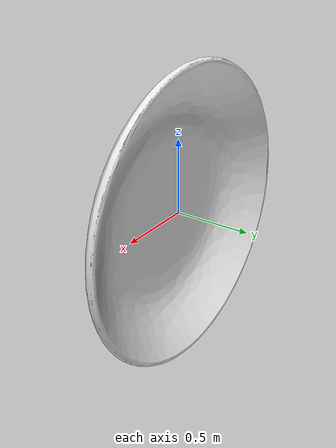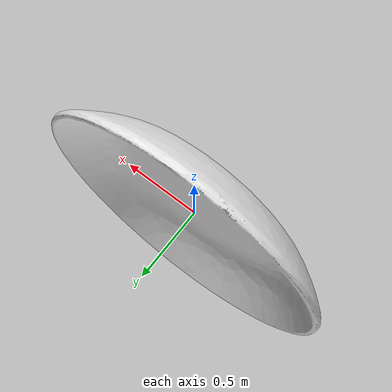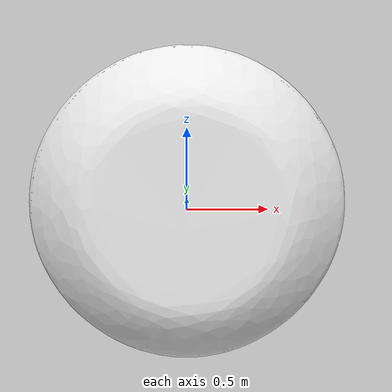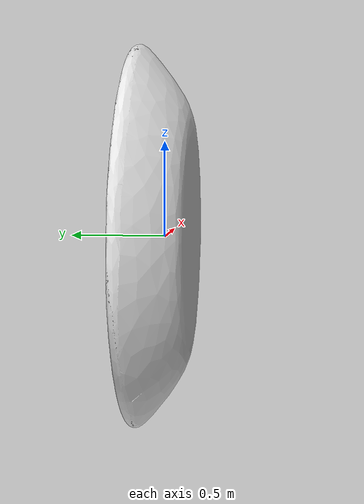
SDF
<?xml version="1.0"?>
<sdf version="1.7">
  <model name="plate">
    <link name="plate_link">
      <inertial>
        <mass>0.25</mass>
        <pose>0 0 0 0 0 0</pose>
        <inertia>
          <ixx>0.002</ixx>
          <ixy>0</ixy>
          <ixz>0</ixz>
          <iyy>0.002</iyy>
          <iyz>0</iyz>
          <izz>0.003</izz>
        </inertia>
      </inertial>

      <visual name="visual">
        <geometry>
          <mesh>
            <uri>textured.obj</uri>
            <scale>1 1 1</scale>
          </mesh>
        </geometry>
        <material>
          <diffuse>0.9 0.9 0.9 1.0</diffuse>
          <ambient>0.9 0.9 0.9 1.0</ambient>
          <specular>0.5 0.5 0.5 1.0</specular>
        </material>
      </visual>

      <collision name="collision">
        <geometry>
          <mesh>
            <uri>textured.obj</uri>
            <scale>1 1 1</scale>
          </mesh>
        </geometry>
        <drake:proximity_properties>
          <drake:point_contact_stiffness>3000</drake:point_contact_stiffness>
          <drake:hunt_crossley_dissipation>200.0</drake:hunt_crossley_dissipation>
          <drake:mu_dynamic>1.5</drake:mu_dynamic>
          <drake:mu_static>1.5</drake:mu_static>
        </drake:proximity_properties>
      </collision>
    </link>
  </model>
</sdf>
